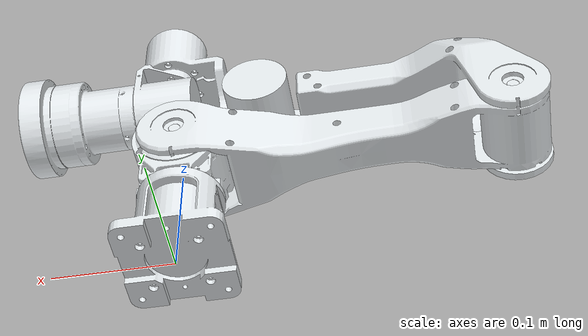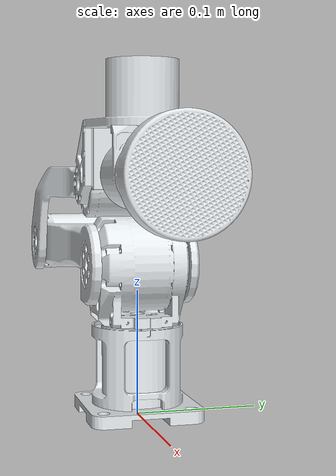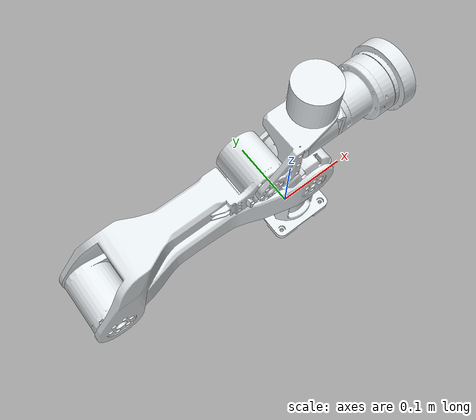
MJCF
<mujoco model="y1_description">
  <compiler angle="radian" meshdir="../meshes/"/>

  <asset>
    <mesh name="base_link" file="base_link.STL"/>
    <mesh name="link1" file="link1.STL"/>
    <mesh name="link2" file="link2.STL"/>
    <mesh name="link3" file="link3.STL"/>
    <mesh name="link4" file="link4.STL"/>
    <mesh name="link5" file="link5.STL"/>
    <mesh name="link6" file="link6.STL"/>
  </asset>

  <worldbody>
    <geom type="mesh" rgba="0.898039 0.917647 0.929412 1" mesh="base_link"/>
    <body name="link1" pos="0 0 0.06675">
      <inertial pos="0.000681167 -0.000462329 0.0457749" quat="0.707129 -0.00103529 -0.0249186 0.706644" mass="0.465086" diaginertia="0.000349531 0.000229228 0.000228107"/>
      <joint name="joint1" pos="0 0 0" axis="0 0 1" range="-2.79 2.79" damping="500"/>
      <geom type="mesh" rgba="0.898039 0.917647 0.929412 1" mesh="link1"/>
      <body name="link2" pos="0.00075 0 0.055" quat="0.707107 0.707107 0 0">
        <inertial pos="-0.188834 -0.00103697 -0.000652233" quat="-0.00721702 0.707628 0.00332789 0.70654" mass="1.00848" diaginertia="0.00611042 0.00604296 0.000409528"/>
        <joint name="joint2" pos="0 0 0" axis="0 0 1" range="-3.14 0" damping="5"/>
        <geom type="mesh" rgba="0.898039 0.917647 0.929412 1" mesh="link2"/>
        <body name="link3" pos="-0.28 0 0">
          <inertial pos="0.133032 0.0530016 0.000290607" quat="0.130686 0.7 -0.105277 0.694146" mass="0.839664" diaginertia="0.00208264 0.00196532 0.000437031"/>
          <joint name="joint3" pos="0 0 0" axis="0 0 1" range="0 3.14" damping="20"/>
          <geom type="mesh" rgba="0.898039 0.917647 0.929412 1" mesh="link3"/>
          <body name="link4" pos="0.215 0.063 0">
            <inertial pos="0.0666891 0.0612495 0.00493164" quat="0.683317 0.48972 0.476057 0.258111" mass="0.455193" diaginertia="0.000224669 0.000204796 0.000166063"/>
            <joint name="joint4" pos="0 0 0" axis="0 0 1" range="-2.145 1.413" damping="5"/>
            <geom type="mesh" rgba="0.898039 0.917647 0.929412 1" mesh="link4"/>
            <body name="link5" pos="0.08 0.052 0.000249998" quat="0.707107 0.707107 0 0">
              <inertial pos="0.00248531 1.71804e-05 0.0400786" quat="0.98562 0.0253316 -0.166455 0.0142538" mass="0.373509" diaginertia="0.000167271 0.000150256 0.000138284"/>
              <joint name="joint5" pos="0 0 0" axis="0 0 1" range="-1.482 1.482" damping="5"/>
              <geom type="mesh" rgba="0.898039 0.917647 0.929412 1" mesh="link5"/>
              <body name="link6" pos="0.0235 0 0.044" quat="1.41622e-10 -1 0 0">
                <inertial pos="0.0108107 0.000127504 0.000160105" quat="0.915282 0.402814 0.00033145 -0.000634813" mass="0.0724469" diaginertia="3.15032e-05 1.68265e-05 1.65267e-05"/>
                <joint name="joint6" pos="0 0 0" axis="1 0 0" range="-2.529 2.529" damping="5"/>
                <geom type="mesh" rgba="0.898039 0.917647 0.929412 1" mesh="link6"/>
              </body>
            </body>
          </body>
        </body>
      </body>
    </body>
  </worldbody>
  <actuator>
      <position name="joint1" ctrllimited="true" ctrlrange="-2.79 2.79" joint="joint1" kp="10000" />
      <position name="joint2" ctrllimited="true" ctrlrange="-3.14 0" joint="joint2" kp="2000" />
      <position name="joint3" ctrllimited="true" ctrlrange="0 3.14" joint="joint3" kp="2000" />
      <position name="joint4" ctrllimited="true" ctrlrange="-2.145 1.413" joint="joint4" kp="500" />
      <position name="joint5" ctrllimited="true" ctrlrange="-1.482 1.482" joint="joint5" kp="200" />
      <position name="joint6" ctrllimited="true" ctrlrange="-2.529 2.529" joint="joint6" kp="200" />
  </actuator>
</mujoco>
